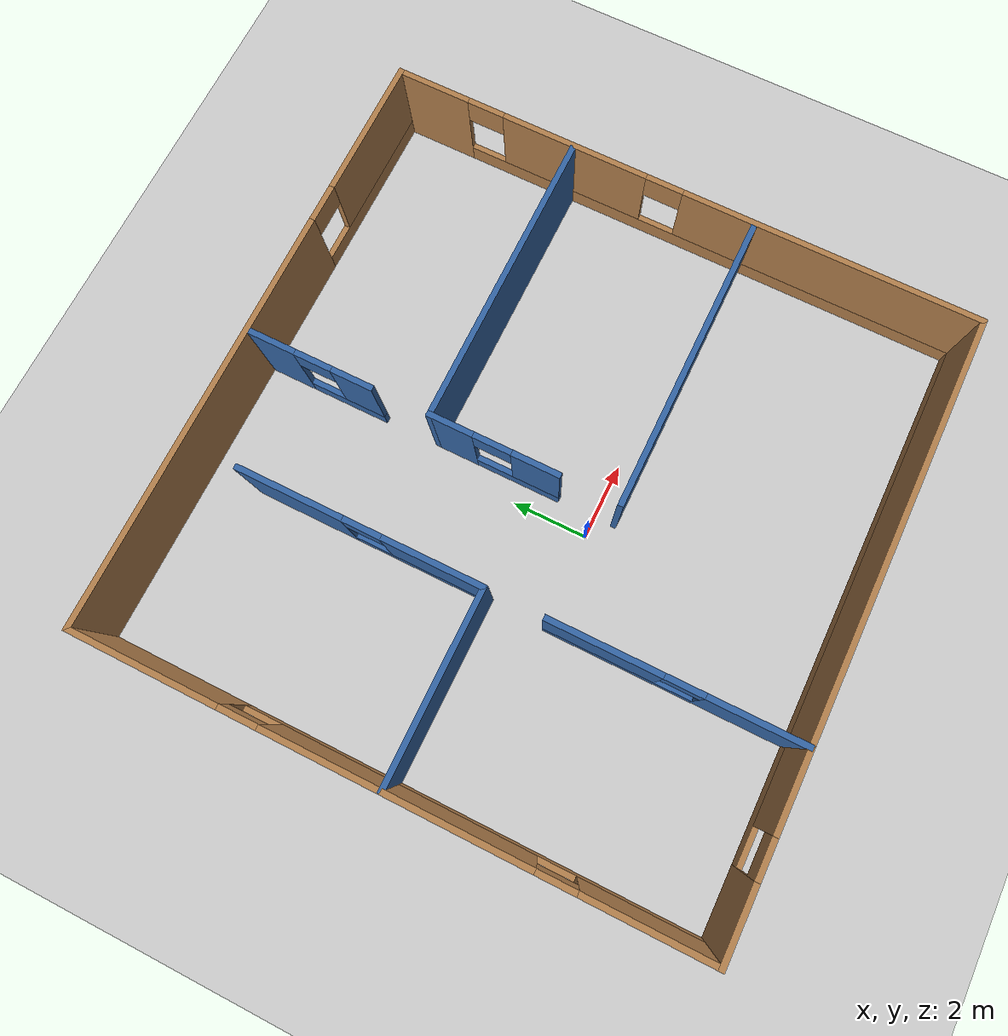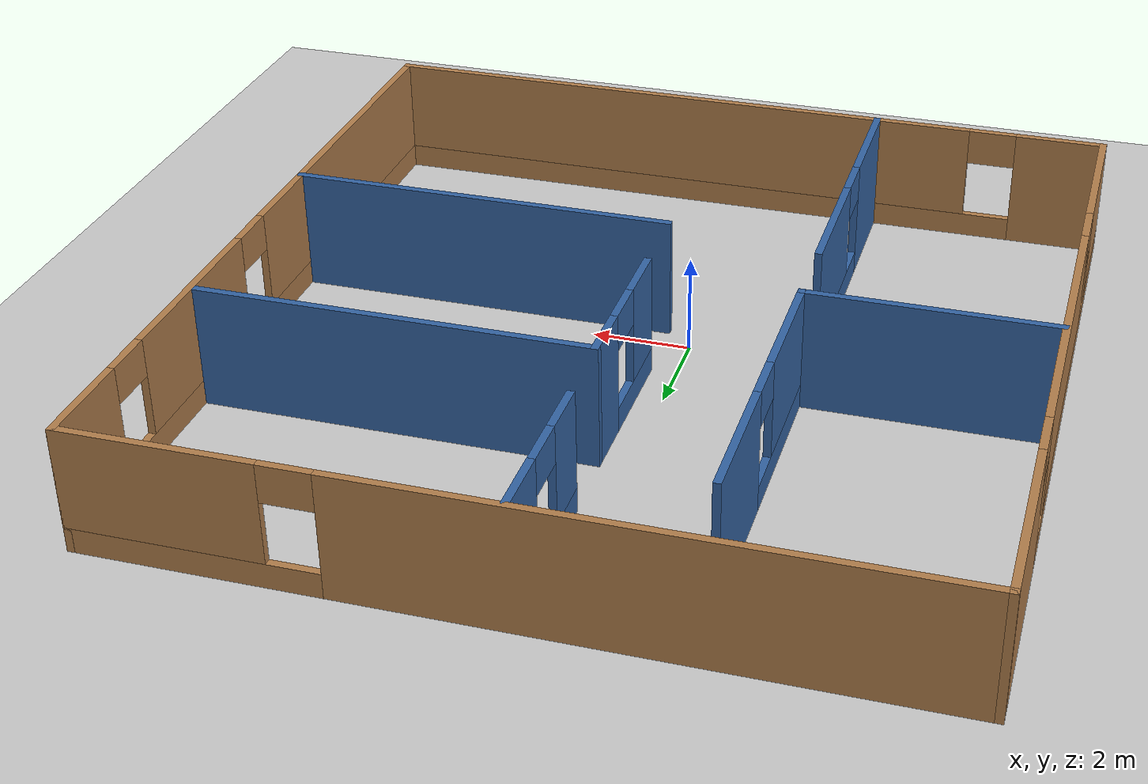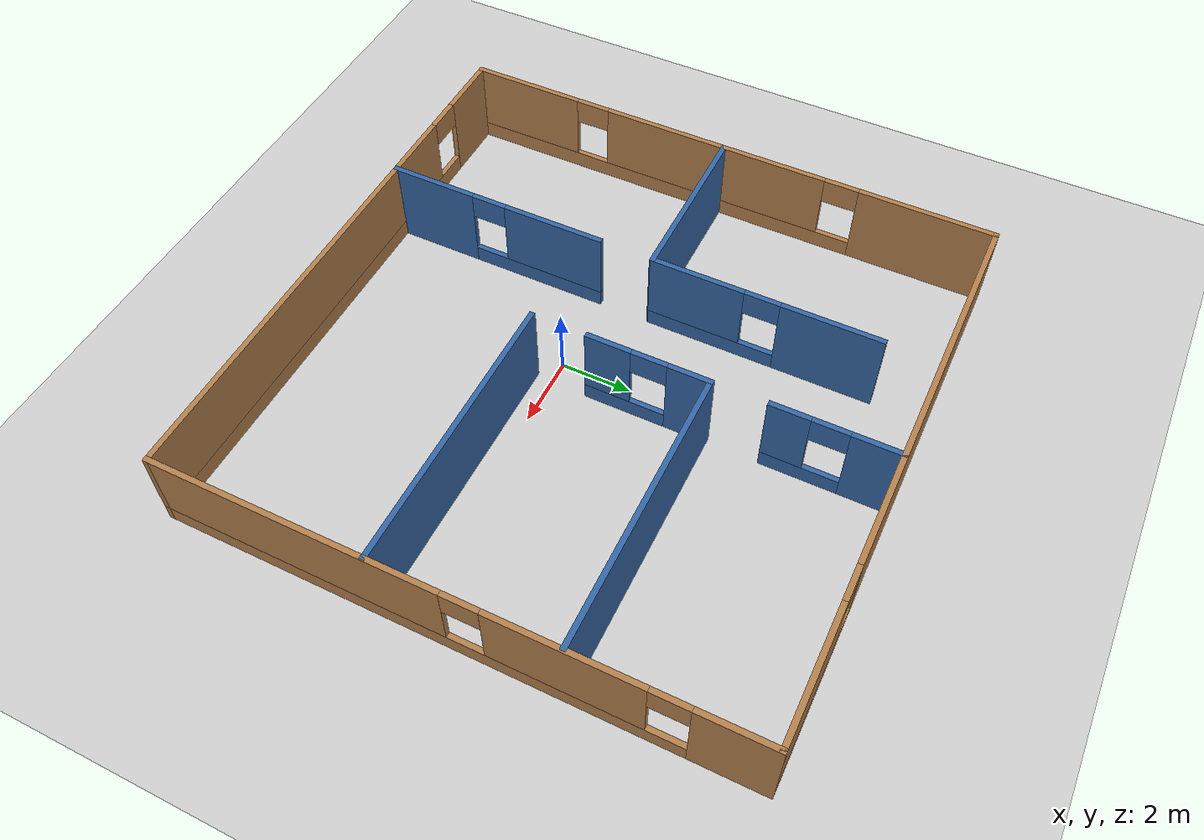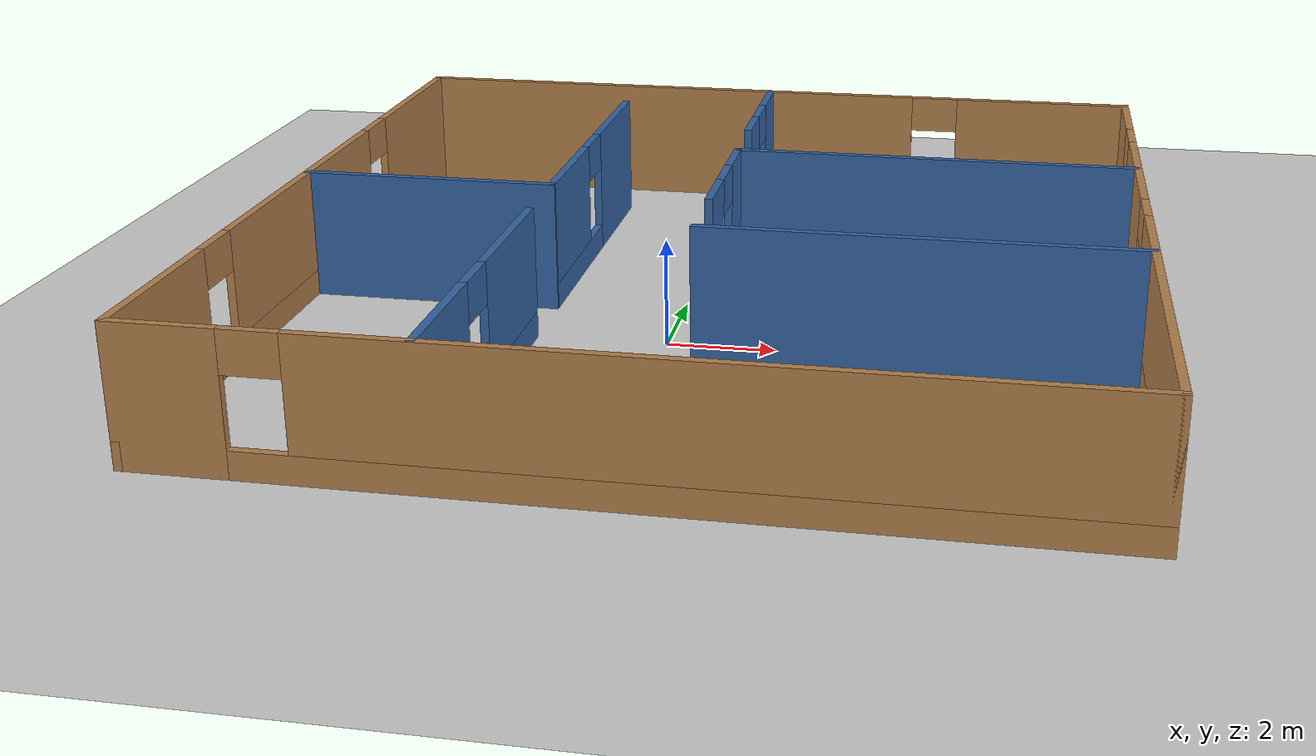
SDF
<sdf version="1.6">
 <world name="default">
  <light name="sun" type="directional">
   <pose>0 0 10 0 -0 0</pose>
   <diffuse>0.8 0.8 0.8 1</diffuse>
   <specular>0.2 0.2 0.2 1</specular>
   <attenuation>
    <range>1000</range>
    <constant>0.9</constant>
    <linear>0.01</linear>
    <quadratic>0.001</quadratic>
   </attenuation>
   <direction>-0.5 0.1 -0.9</direction>
  </light>
  <model name="ground_plane">
   <static>1</static>
   <link name="link">
    <collision name="collision">
     <geometry><plane><normal>0 0 1</normal><size>100 100</size></plane></geometry>
     <surface>
      <contact><collide_bitmask>65535</collide_bitmask></contact>
      <friction><ode><mu>100</mu><mu2>50</mu2></ode></friction>
     </surface>
    </collision>
    <visual name="visual">
     <cast_shadows>0</cast_shadows>
     <geometry><plane><normal>0 0 1</normal><size>100 100</size></plane></geometry>
     <material>
      <script><uri>file://media/materials/scripts/gazebo.material</uri><name>Gazebo/Grey</name></script>
     </material>
    </visual>
   </link>
  </model>
  <gravity>0 0 -9.8</gravity>
  <magnetic_field>6e-06 2.3e-05 -4.2e-05</magnetic_field>
  <atmosphere type="adiabatic"/>
  <physics name="default_physics" default="0" type="ode">
   <max_step_size>0.001</max_step_size>
   <real_time_factor>1</real_time_factor>
   <real_time_update_rate>1000</real_time_update_rate>
  </physics>
  <scene><ambient>0.4 0.4 0.4 1</ambient><background>0.7 0.7 0.7 1</background><shadows>1</shadows></scene>
  <audio><device>default</device></audio>
  <spherical_coordinates>
   <surface_model>EARTH_WGS84</surface_model>
   <latitude_deg>0</latitude_deg>
   <longitude_deg>0</longitude_deg>
   <elevation>0</elevation>
   <heading_deg>0</heading_deg>
  </spherical_coordinates>
  <model name="hospital2">
   <pose>0.55958 1.44133 0 0 -0 0</pose>
   <link name="Wall_0">
    <pose>-7.925 0 0 0 -0 -1.5708</pose>
    <visual name="Wall_0_Visual_0">
     <pose>-6.03298 0 1.25 0 -0 0</pose>
     <geometry><box><size>3.93404 0.15 2.5</size></box></geometry>
     <material>
      <script><uri>file://media/materials/scripts/gazebo.material</uri><name>Gazebo/Wood</name></script>
      <ambient>1 1 1 1</ambient>
     </material>
     <meta><layer>0</layer></meta>
    </visual>
    <collision name="Wall_0_Collision_0">
     <geometry><box><size>3.93404 0.15 2.5</size></box></geometry>
     <pose>-6.03298 0 1.25 0 -0 0</pose>
    </collision>
    <visual name="Wall_0_Visual_1">
     <pose>1.96702 0 0.25 0 -0 0</pose>
     <geometry><box><size>12.066 0.15 0.5</size></box></geometry>
     <material>
      <script><uri>file://media/materials/scripts/gazebo.material</uri><name>Gazebo/Wood</name></script>
      <ambient>1 1 1 1</ambient>
     </material>
     <meta><layer>0</layer></meta>
    </visual>
    <collision name="Wall_0_Collision_1">
     <geometry><box><size>12.066 0.15 0.5</size></box></geometry>
     <pose>1.96702 0 0.25 0 -0 0</pose>
    </collision>
    <visual name="Wall_0_Visual_2">
     <pose>0.290577 0 1.5 0 -0 0</pose>
     <geometry><box><size>6.71308 0.15 2</size></box></geometry>
     <material>
      <script><uri>file://media/materials/scripts/gazebo.material</uri><name>Gazebo/Wood</name></script>
      <ambient>1 1 1 1</ambient>
     </material>
     <meta><layer>0</layer></meta>
    </visual>
    <collision name="Wall_0_Collision_2">
     <geometry><box><size>6.71308 0.15 2</size></box></geometry>
     <pose>0.290577 0 1.5 0 -0 0</pose>
    </collision>
    <visual name="Wall_0_Visual_3">
     <pose>6.32356 0 1.5 0 -0 0</pose>
     <geometry><box><size>3.35288 0.15 2</size></box></geometry>
     <material>
      <script><uri>file://media/materials/scripts/gazebo.material</uri><name>Gazebo/Wood</name></script>
      <ambient>1 1 1 1</ambient>
     </material>
     <meta><layer>0</layer></meta>
    </visual>
    <collision name="Wall_0_Collision_3">
     <geometry><box><size>3.35288 0.15 2</size></box></geometry>
     <pose>6.32356 0 1.5 0 -0 0</pose>
    </collision>
    <visual name="Wall_0_Visual_4">
     <pose>-3.56596 0 2.125 0 -0 0</pose>
     <geometry><box><size>1 0.15 0.75</size></box></geometry>
     <material>
      <script><uri>file://media/materials/scripts/gazebo.material</uri><name>Gazebo/Wood</name></script>
      <ambient>1 1 1 1</ambient>
     </material>
     <meta><layer>0</layer></meta>
    </visual>
    <collision name="Wall_0_Collision_4">
     <geometry><box><size>1 0.15 0.75</size></box></geometry>
     <pose>-3.56596 0 2.125 0 -0 0</pose>
    </collision>
    <visual name="Wall_0_Visual_5">
     <pose>4.14712 0 2.125 0 -0 0</pose>
     <geometry><box><size>1 0.15 0.75</size></box></geometry>
     <material>
      <script><uri>file://media/materials/scripts/gazebo.material</uri><name>Gazebo/Wood</name></script>
      <ambient>1 1 1 1</ambient>
     </material>
     <meta><layer>0</layer></meta>
    </visual>
    <collision name="Wall_0_Collision_5">
     <geometry><box><size>1 0.15 0.75</size></box></geometry>
     <pose>4.14712 0 2.125 0 -0 0</pose>
    </collision>
   </link>
   <link name="Wall_10">
    <pose>0 -7.925 0 0 -0 0</pose>
    <visual name="Wall_10_Visual_0">
     <pose>-7.04607 0 1.25 0 -0 0</pose>
     <geometry><box><size>1.90786 0.15 2.5</size></box></geometry>
     <material>
      <script><uri>file://media/materials/scripts/gazebo.material</uri><name>Gazebo/Wood</name></script>
      <ambient>1 1 1 1</ambient>
     </material>
     <meta><layer>0</layer></meta>
    </visual>
    <collision name="Wall_10_Collision_0">
     <geometry><box><size>1.90786 0.15 2.5</size></box></geometry>
     <pose>-7.04607 0 1.25 0 -0 0</pose>
    </collision>
    <visual name="Wall_10_Visual_1">
     <pose>0.953927 0 0.25 0 -0 0</pose>
     <geometry><box><size>14.0921 0.15 0.5</size></box></geometry>
     <material>
      <script><uri>file://media/materials/scripts/gazebo.material</uri><name>Gazebo/Wood</name></script>
      <ambient>1 1 1 1</ambient>
     </material>
     <meta><layer>0</layer></meta>
    </visual>
    <collision name="Wall_10_Collision_1">
     <geometry><box><size>14.0921 0.15 0.5</size></box></geometry>
     <pose>0.953927 0 0.25 0 -0 0</pose>
    </collision>
    <visual name="Wall_10_Visual_2">
     <pose>1.45393 0 1.5 0 -0 0</pose>
     <geometry><box><size>13.0921 0.15 2</size></box></geometry>
     <material>
      <script><uri>file://media/materials/scripts/gazebo.material</uri><name>Gazebo/Wood</name></script>
      <ambient>1 1 1 1</ambient>
     </material>
     <meta><layer>0</layer></meta>
    </visual>
    <collision name="Wall_10_Collision_2">
     <geometry><box><size>13.0921 0.15 2</size></box></geometry>
     <pose>1.45393 0 1.5 0 -0 0</pose>
    </collision>
    <visual name="Wall_10_Visual_3">
     <pose>-5.59215 0 2.125 0 -0 0</pose>
     <geometry><box><size>1 0.15 0.75</size></box></geometry>
     <material>
      <script><uri>file://media/materials/scripts/gazebo.material</uri><name>Gazebo/Wood</name></script>
      <ambient>1 1 1 1</ambient>
     </material>
     <meta><layer>0</layer></meta>
    </visual>
    <collision name="Wall_10_Collision_3">
     <geometry><box><size>1 0.15 0.75</size></box></geometry>
     <pose>-5.59215 0 2.125 0 -0 0</pose>
    </collision>
   </link>
   <link name="Wall_25">
    <collision name="Wall_25_Collision">
     <geometry><box><size>5 0.15 2.5</size></box></geometry>
     <pose>0 0 1.25 0 -0 0</pose>
    </collision>
    <visual name="Wall_25_Visual">
     <pose>0 0 1.25 0 -0 0</pose>
     <geometry><box><size>5 0.15 2.5</size></box></geometry>
     <material>
      <script><uri>file://media/materials/scripts/gazebo.material</uri><name>Gazebo/Grey</name></script>
      <ambient>0.203922 0.396078 0.643137 1</ambient>
     </material>
     <meta><layer>0</layer></meta>
    </visual>
    <pose>-5.48951 0.008511 0 0 -0 0</pose>
   </link>
   <link name="Wall_27">
    <pose>-3.06634 -4.74388 0 0 -0 1.5708</pose>
    <visual name="Wall_27_Visual_0">
     <pose>-1.97487 0 1.25 0 -0 0</pose>
     <geometry><box><size>2.55027 0.15 2.5</size></box></geometry>
     <material>
      <script><uri>file://media/materials/scripts/gazebo.material</uri><name>Gazebo/Grey</name></script>
      <ambient>0.203922 0.396078 0.643137 1</ambient>
     </material>
     <meta><layer>0</layer></meta>
    </visual>
    <collision name="Wall_27_Collision_0">
     <geometry><box><size>2.55027 0.15 2.5</size></box></geometry>
     <pose>-1.97487 0 1.25 0 -0 0</pose>
    </collision>
    <visual name="Wall_27_Visual_1">
     <pose>1.27513 0 0.25 0 -0 0</pose>
     <geometry><box><size>3.94973 0.15 0.5</size></box></geometry>
     <material>
      <script><uri>file://media/materials/scripts/gazebo.material</uri><name>Gazebo/Grey</name></script>
      <ambient>0.203922 0.396078 0.643137 1</ambient>
     </material>
     <meta><layer>0</layer></meta>
    </visual>
    <collision name="Wall_27_Collision_1">
     <geometry><box><size>3.94973 0.15 0.5</size></box></geometry>
     <pose>1.27513 0 0.25 0 -0 0</pose>
    </collision>
    <visual name="Wall_27_Visual_2">
     <pose>1.77513 0 1.5 0 -0 0</pose>
     <geometry><box><size>2.94973 0.15 2</size></box></geometry>
     <material>
      <script><uri>file://media/materials/scripts/gazebo.material</uri><name>Gazebo/Grey</name></script>
      <ambient>0.203922 0.396078 0.643137 1</ambient>
     </material>
     <meta><layer>0</layer></meta>
    </visual>
    <collision name="Wall_27_Collision_2">
     <geometry><box><size>2.94973 0.15 2</size></box></geometry>
     <pose>1.77513 0 1.5 0 -0 0</pose>
    </collision>
    <visual name="Wall_27_Visual_3">
     <pose>-0.199732 0 2.125 0 -0 0</pose>
     <geometry><box><size>1 0.15 0.75</size></box></geometry>
     <material>
      <script><uri>file://media/materials/scripts/gazebo.material</uri><name>Gazebo/Grey</name></script>
      <ambient>0.203922 0.396078 0.643137 1</ambient>
     </material>
     <meta><layer>0</layer></meta>
    </visual>
    <collision name="Wall_27_Collision_3">
     <geometry><box><size>1 0.15 0.75</size></box></geometry>
     <pose>-0.199732 0 2.125 0 -0 0</pose>
    </collision>
   </link>
   <link name="Wall_34">
    <pose>-3.05594 3.21161 0 0 -0 -1.5708</pose>
    <visual name="Wall_34_Visual_0">
     <pose>-1.83412 0 1.25 0 -0 0</pose>
     <geometry><box><size>2.83175 0.15 2.5</size></box></geometry>
     <material>
      <script><uri>file://media/materials/scripts/gazebo.material</uri><name>Gazebo/Grey</name></script>
      <ambient>0.203922 0.396078 0.643137 1</ambient>
     </material>
     <meta><layer>0</layer></meta>
    </visual>
    <collision name="Wall_34_Collision_0">
     <geometry><box><size>2.83175 0.15 2.5</size></box></geometry>
     <pose>-1.83412 0 1.25 0 -0 0</pose>
    </collision>
    <visual name="Wall_34_Visual_1">
     <pose>1.41588 0 0.25 0 -0 0</pose>
     <geometry><box><size>3.66825 0.15 0.5</size></box></geometry>
     <material>
      <script><uri>file://media/materials/scripts/gazebo.material</uri><name>Gazebo/Grey</name></script>
      <ambient>0.203922 0.396078 0.643137 1</ambient>
     </material>
     <meta><layer>0</layer></meta>
    </visual>
    <collision name="Wall_34_Collision_1">
     <geometry><box><size>3.66825 0.15 0.5</size></box></geometry>
     <pose>1.41588 0 0.25 0 -0 0</pose>
    </collision>
    <visual name="Wall_34_Visual_2">
     <pose>1.91588 0 1.5 0 -0 0</pose>
     <geometry><box><size>2.66825 0.15 2</size></box></geometry>
     <material>
      <script><uri>file://media/materials/scripts/gazebo.material</uri><name>Gazebo/Grey</name></script>
      <ambient>0.203922 0.396078 0.643137 1</ambient>
     </material>
     <meta><layer>0</layer></meta>
    </visual>
    <collision name="Wall_34_Collision_2">
     <geometry><box><size>2.66825 0.15 2</size></box></geometry>
     <pose>1.91588 0 1.5 0 -0 0</pose>
    </collision>
    <visual name="Wall_34_Visual_3">
     <pose>0.081752 0 2.125 0 -0 0</pose>
     <geometry><box><size>1 0.15 0.75</size></box></geometry>
     <material>
      <script><uri>file://media/materials/scripts/gazebo.material</uri><name>Gazebo/Grey</name></script>
      <ambient>0.203922 0.396078 0.643137 1</ambient>
     </material>
     <meta><layer>0</layer></meta>
    </visual>
    <collision name="Wall_34_Collision_3">
     <geometry><box><size>1 0.15 0.75</size></box></geometry>
     <pose>0.081752 0 2.125 0 -0 0</pose>
    </collision>
   </link>
   <link name="Wall_36">
    <collision name="Wall_36_Collision">
     <geometry><box><size>8 0.15 2.5</size></box></geometry>
     <pose>0 0 1.25 0 -0 0</pose>
    </collision>
    <visual name="Wall_36_Visual">
     <pose>0 0 1.25 0 -0 0</pose>
     <geometry><box><size>8 0.15 2.5</size></box></geometry>
     <material>
      <script><uri>file://media/materials/scripts/gazebo.material</uri><name>Gazebo/Grey</name></script>
      <ambient>0.203922 0.396078 0.643137 1</ambient>
     </material>
     <meta><layer>0</layer></meta>
    </visual>
    <pose>3.95383 2.98804 0 0 -0 0</pose>
   </link>
   <link name="Wall_40">
    <collision name="Wall_40_Collision">
     <geometry><box><size>8 0.15 2.5</size></box></geometry>
     <pose>0 0 1.25 0 -0 0</pose>
    </collision>
    <visual name="Wall_40_Visual">
     <pose>0 0 1.25 0 -0 0</pose>
     <geometry><box><size>8 0.15 2.5</size></box></geometry>
     <material>
      <script><uri>file://media/materials/scripts/gazebo.material</uri><name>Gazebo/Grey</name></script>
      <ambient>0.203922 0.396078 0.643137 1</ambient>
     </material>
     <meta><layer>0</layer></meta>
    </visual>
    <pose>3.97678 -1.96775 0 0 -0 0</pose>
   </link>
   <link name="Wall_42">
    <pose>0.028832 1.31304 0 0 -0 -1.5708</pose>
    <visual name="Wall_42_Visual_0">
     <pose>-1.13833 0 1.25 0 -0 0</pose>
     <geometry><box><size>1.22333 0.15 2.5</size></box></geometry>
     <material>
      <script><uri>file://media/materials/scripts/gazebo.material</uri><name>Gazebo/Grey</name></script>
      <ambient>0.203922 0.396078 0.643137 1</ambient>
     </material>
     <meta><layer>0</layer></meta>
    </visual>
    <collision name="Wall_42_Collision_0">
     <geometry><box><size>1.22333 0.15 2.5</size></box></geometry>
     <pose>-1.13833 0 1.25 0 -0 0</pose>
    </collision>
    <visual name="Wall_42_Visual_1">
     <pose>0.611666 0 0.25 0 -0 0</pose>
     <geometry><box><size>2.27667 0.15 0.5</size></box></geometry>
     <material>
      <script><uri>file://media/materials/scripts/gazebo.material</uri><name>Gazebo/Grey</name></script>
      <ambient>0.203922 0.396078 0.643137 1</ambient>
     </material>
     <meta><layer>0</layer></meta>
    </visual>
    <collision name="Wall_42_Collision_1">
     <geometry><box><size>2.27667 0.15 0.5</size></box></geometry>
     <pose>0.611666 0 0.25 0 -0 0</pose>
    </collision>
    <visual name="Wall_42_Visual_2">
     <pose>1.11167 0 1.5 0 -0 0</pose>
     <geometry><box><size>1.27667 0.15 2</size></box></geometry>
     <material>
      <script><uri>file://media/materials/scripts/gazebo.material</uri><name>Gazebo/Grey</name></script>
      <ambient>0.203922 0.396078 0.643137 1</ambient>
     </material>
     <meta><layer>0</layer></meta>
    </visual>
    <collision name="Wall_42_Collision_2">
     <geometry><box><size>1.27667 0.15 2</size></box></geometry>
     <pose>1.11167 0 1.5 0 -0 0</pose>
    </collision>
    <visual name="Wall_42_Visual_3">
     <pose>-0.026667 0 2.125 0 -0 0</pose>
     <geometry><box><size>1 0.15 0.75</size></box></geometry>
     <material>
      <script><uri>file://media/materials/scripts/gazebo.material</uri><name>Gazebo/Grey</name></script>
      <ambient>0.203922 0.396078 0.643137 1</ambient>
     </material>
     <meta><layer>0</layer></meta>
    </visual>
    <collision name="Wall_42_Collision_3">
     <geometry><box><size>1 0.15 0.75</size></box></geometry>
     <pose>-0.026667 0 2.125 0 -0 0</pose>
    </collision>
   </link>
   <link name="Wall_44">
    <pose>0.005316 6.23153 0 0 -0 -1.5708</pose>
    <visual name="Wall_44_Visual_0">
     <pose>-1.06006 0 1.25 0 -0 0</pose>
     <geometry><box><size>1.37988 0.15 2.5</size></box></geometry>
     <material>
      <script><uri>file://media/materials/scripts/gazebo.material</uri><name>Gazebo/Grey</name></script>
      <ambient>0.203922 0.396078 0.643137 1</ambient>
     </material>
     <meta><layer>0</layer></meta>
    </visual>
    <collision name="Wall_44_Collision_0">
     <geometry><box><size>1.37988 0.15 2.5</size></box></geometry>
     <pose>-1.06006 0 1.25 0 -0 0</pose>
    </collision>
    <visual name="Wall_44_Visual_1">
     <pose>0.689939 0 0.25 0 -0 0</pose>
     <geometry><box><size>2.12012 0.15 0.5</size></box></geometry>
     <material>
      <script><uri>file://media/materials/scripts/gazebo.material</uri><name>Gazebo/Grey</name></script>
      <ambient>0.203922 0.396078 0.643137 1</ambient>
     </material>
     <meta><layer>0</layer></meta>
    </visual>
    <collision name="Wall_44_Collision_1">
     <geometry><box><size>2.12012 0.15 0.5</size></box></geometry>
     <pose>0.689939 0 0.25 0 -0 0</pose>
    </collision>
    <visual name="Wall_44_Visual_2">
     <pose>1.18994 0 1.5 0 -0 0</pose>
     <geometry><box><size>1.12012 0.15 2</size></box></geometry>
     <material>
      <script><uri>file://media/materials/scripts/gazebo.material</uri><name>Gazebo/Grey</name></script>
      <ambient>0.203922 0.396078 0.643137 1</ambient>
     </material>
     <meta><layer>0</layer></meta>
    </visual>
    <collision name="Wall_44_Collision_2">
     <geometry><box><size>1.12012 0.15 2</size></box></geometry>
     <pose>1.18994 0 1.5 0 -0 0</pose>
    </collision>
    <visual name="Wall_44_Visual_3">
     <pose>0.129878 0 2.125 0 -0 0</pose>
     <geometry><box><size>1 0.15 0.75</size></box></geometry>
     <material>
      <script><uri>file://media/materials/scripts/gazebo.material</uri><name>Gazebo/Grey</name></script>
      <ambient>0.203922 0.396078 0.643137 1</ambient>
     </material>
     <meta><layer>0</layer></meta>
    </visual>
    <collision name="Wall_44_Collision_3">
     <geometry><box><size>1 0.15 0.75</size></box></geometry>
     <pose>0.129878 0 2.125 0 -0 0</pose>
    </collision>
   </link>
   <link name="Wall_6">
    <pose>0 7.925 0 0 -0 0</pose>
    <visual name="Wall_6_Visual_0">
     <pose>-2.37984 0 1.25 0 -0 0</pose>
     <geometry><box><size>11.2403 0.15 2.5</size></box></geometry>
     <material>
      <script><uri>file://media/materials/scripts/gazebo.material</uri><name>Gazebo/Wood</name></script>
      <ambient>1 1 1 1</ambient>
     </material>
     <meta><layer>0</layer></meta>
    </visual>
    <collision name="Wall_6_Collision_0">
     <geometry><box><size>11.2403 0.15 2.5</size></box></geometry>
     <pose>-2.37984 0 1.25 0 -0 0</pose>
    </collision>
    <visual name="Wall_6_Visual_1">
     <pose>5.62016 0 0.25 0 -0 0</pose>
     <geometry><box><size>4.75968 0.15 0.5</size></box></geometry>
     <material>
      <script><uri>file://media/materials/scripts/gazebo.material</uri><name>Gazebo/Wood</name></script>
      <ambient>1 1 1 1</ambient>
     </material>
     <meta><layer>0</layer></meta>
    </visual>
    <collision name="Wall_6_Collision_1">
     <geometry><box><size>4.75968 0.15 0.5</size></box></geometry>
     <pose>5.62016 0 0.25 0 -0 0</pose>
    </collision>
    <visual name="Wall_6_Visual_2">
     <pose>6.12016 0 1.5 0 -0 0</pose>
     <geometry><box><size>3.75968 0.15 2</size></box></geometry>
     <material>
      <script><uri>file://media/materials/scripts/gazebo.material</uri><name>Gazebo/Wood</name></script>
      <ambient>1 1 1 1</ambient>
     </material>
     <meta><layer>0</layer></meta>
    </visual>
    <collision name="Wall_6_Collision_2">
     <geometry><box><size>3.75968 0.15 2</size></box></geometry>
     <pose>6.12016 0 1.5 0 -0 0</pose>
    </collision>
    <visual name="Wall_6_Visual_3">
     <pose>3.74032 0 2.125 0 -0 0</pose>
     <geometry><box><size>1 0.15 0.75</size></box></geometry>
     <material>
      <script><uri>file://media/materials/scripts/gazebo.material</uri><name>Gazebo/Wood</name></script>
      <ambient>1 1 1 1</ambient>
     </material>
     <meta><layer>0</layer></meta>
    </visual>
    <collision name="Wall_6_Collision_3">
     <geometry><box><size>1 0.15 0.75</size></box></geometry>
     <pose>3.74032 0 2.125 0 -0 0</pose>
    </collision>
   </link>
   <link name="Wall_8">
    <pose>7.925 0 0 0 -0 -1.5708</pose>
    <visual name="Wall_8_Visual_0">
     <pose>-6.98242 0 1.25 0 -0 0</pose>
     <geometry><box><size>2.03516 0.15 2.5</size></box></geometry>
     <material>
      <script><uri>file://media/materials/scripts/gazebo.material</uri><name>Gazebo/Wood</name></script>
      <ambient>1 1 1 1</ambient>
     </material>
     <meta><layer>0</layer></meta>
    </visual>
    <collision name="Wall_8_Collision_0">
     <geometry><box><size>2.03516 0.15 2.5</size></box></geometry>
     <pose>-6.98242 0 1.25 0 -0 0</pose>
    </collision>
    <visual name="Wall_8_Visual_1">
     <pose>1.01758 0 0.25 0 -0 0</pose>
     <geometry><box><size>13.9648 0.15 0.5</size></box></geometry>
     <material>
      <script><uri>file://media/materials/scripts/gazebo.material</uri><name>Gazebo/Wood</name></script>
      <ambient>1 1 1 1</ambient>
     </material>
     <meta><layer>0</layer></meta>
    </visual>
    <collision name="Wall_8_Collision_1">
     <geometry><box><size>13.9648 0.15 0.5</size></box></geometry>
     <pose>1.01758 0 0.25 0 -0 0</pose>
    </collision>
    <visual name="Wall_8_Visual_2">
     <pose>-2.97158 0 1.5 0 -0 0</pose>
     <geometry><box><size>3.98652 0.15 2</size></box></geometry>
     <material>
      <script><uri>file://media/materials/scripts/gazebo.material</uri><name>Gazebo/Wood</name></script>
      <ambient>1 1 1 1</ambient>
     </material>
     <meta><layer>0</layer></meta>
    </visual>
    <collision name="Wall_8_Collision_2">
     <geometry><box><size>3.98652 0.15 2</size></box></geometry>
     <pose>-2.97158 0 1.5 0 -0 0</pose>
    </collision>
    <visual name="Wall_8_Visual_3">
     <pose>4.01084 0 1.5 0 -0 0</pose>
     <geometry><box><size>7.97832 0.15 2</size></box></geometry>
     <material>
      <script><uri>file://media/materials/scripts/gazebo.material</uri><name>Gazebo/Wood</name></script>
      <ambient>1 1 1 1</ambient>
     </material>
     <meta><layer>0</layer></meta>
    </visual>
    <collision name="Wall_8_Collision_3">
     <geometry><box><size>7.97832 0.15 2</size></box></geometry>
     <pose>4.01084 0 1.5 0 -0 0</pose>
    </collision>
    <visual name="Wall_8_Visual_4">
     <pose>-5.46484 0 2.125 0 -0 0</pose>
     <geometry><box><size>1 0.15 0.75</size></box></geometry>
     <material>
      <script><uri>file://media/materials/scripts/gazebo.material</uri><name>Gazebo/Wood</name></script>
      <ambient>1 1 1 1</ambient>
     </material>
     <meta><layer>0</layer></meta>
    </visual>
    <collision name="Wall_8_Collision_4">
     <geometry><box><size>1 0.15 0.75</size></box></geometry>
     <pose>-5.46484 0 2.125 0 -0 0</pose>
    </collision>
    <visual name="Wall_8_Visual_5">
     <pose>-0.478321 0 2.125 0 -0 0</pose>
     <geometry><box><size>1 0.15 0.75</size></box></geometry>
     <material>
      <script><uri>file://media/materials/scripts/gazebo.material</uri><name>Gazebo/Wood</name></script>
      <ambient>1 1 1 1</ambient>
     </material>
     <meta><layer>0</layer></meta>
    </visual>
    <collision name="Wall_8_Collision_5">
     <geometry><box><size>1 0.15 0.75</size></box></geometry>
     <pose>-0.478321 0 2.125 0 -0 0</pose>
    </collision>
   </link>
   <static>1</static>
  </model>
 </world>
</sdf>
